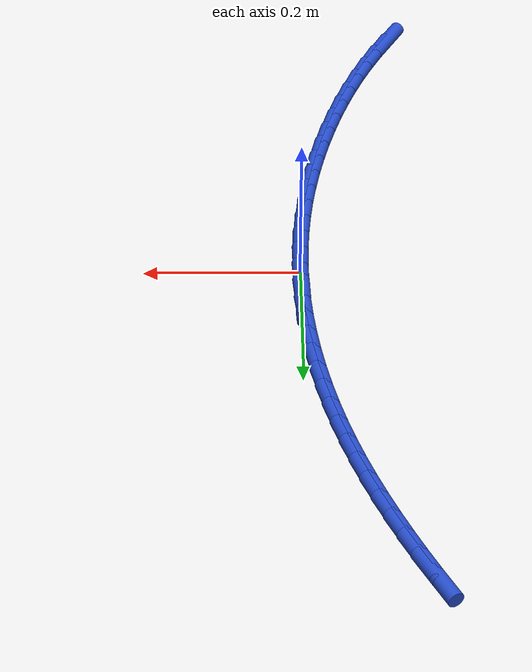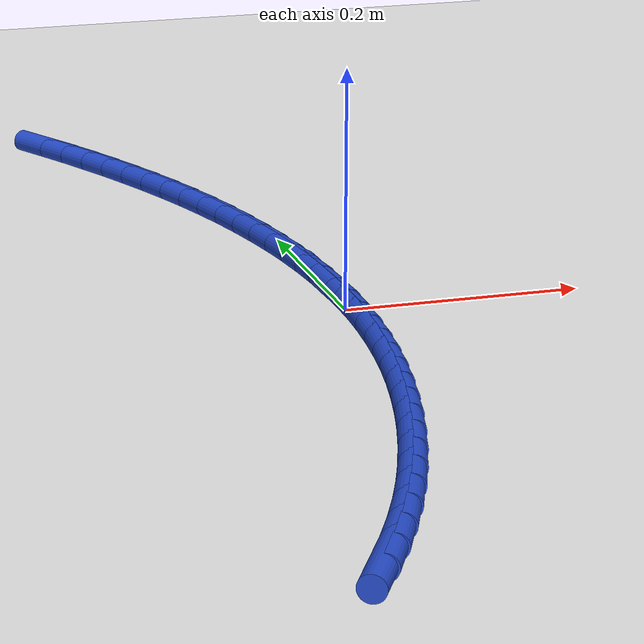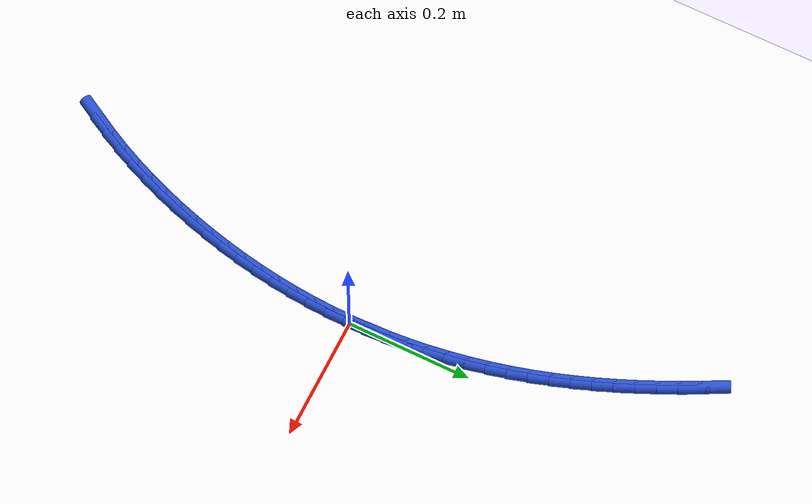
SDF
<sdf version="1.6">
 <world name="default">
  <model name="ground_plane">
   <static>1</static>
   <link name="link">
    <collision name="collision">
     <geometry><plane><normal>0 0 1</normal><size>100 100</size></plane></geometry>
     <surface><friction><ode><mu>100</mu><mu2>50</mu2></ode></friction></surface>
    </collision>
    <visual name="visual">
     <cast_shadows>0</cast_shadows>
     <geometry><plane><normal>0 0 1</normal><size>100 100</size></plane></geometry>
     <material>
      <script><uri>file://media/materials/scripts/gazebo.material</uri><name>Gazebo/WhiteGlow</name></script>
     </material>
    </visual>
   </link>
  </model>
  <model name="line">
   <link name="link_0">
    <pose>3.209238430557093e-17 -1.3877787807814457e-17 0.01 0 1.57 -1.5539555337923852</pose>
    <collision name="collision">
     <geometry><cylinder><radius>0.01</radius><length>0.08</length></cylinder></geometry>
    </collision>
    <visual name="visual">
     <material>
      <script><name>Gazebo/Blue</name><uri>file://media/materials/scripts/gazebo.material</uri></script>
     </material>
     <geometry><cylinder><radius>0.01</radius><length>0.08</length></cylinder></geometry>
    </visual>
   </link>
   <link name="link_1">
    <pose>-0.0005427959826515752 0.03222797566954058 0.01 0 1.57 -1.520898807873776</pose>
    <collision name="collision">
     <geometry><cylinder><radius>0.01</radius><length>0.08</length></cylinder></geometry>
    </collision>
    <visual name="visual">
     <material>
      <script><name>Gazebo/Blue</name><uri>file://media/materials/scripts/gazebo.material</uri></script>
     </material>
     <geometry><cylinder><radius>0.01</radius><length>0.08</length></cylinder></geometry>
    </visual>
   </link>
   <link name="link_2">
    <pose>-0.002152261248135734 0.06445661849176589 0.01 0 1.57 -1.4883414030620206</pose>
    <collision name="collision">
     <geometry><cylinder><radius>0.01</radius><length>0.08</length></cylinder></geometry>
    </collision>
    <visual name="visual">
     <material>
      <script><name>Gazebo/Blue</name><uri>file://media/materials/scripts/gazebo.material</uri></script>
     </material>
     <geometry><cylinder><radius>0.01</radius><length>0.08</length></cylinder></geometry>
    </visual>
   </link>
   <link name="link_3">
    <pose>-0.004812398516318131 0.09664518674869334 0.01 0 1.57 -1.4562248974388412</pose>
    <collision name="collision">
     <geometry><cylinder><radius>0.01</radius><length>0.08</length></cylinder></geometry>
    </collision>
    <visual name="visual">
     <material>
      <script><name>Gazebo/Blue</name><uri>file://media/materials/scripts/gazebo.material</uri></script>
     </material>
     <geometry><cylinder><radius>0.01</radius><length>0.08</length></cylinder></geometry>
    </visual>
   </link>
   <link name="link_4">
    <pose>-0.008507210507064461 0.12875293872234053 0.01 0 1.57 -1.4244891618440185</pose>
    <collision name="collision">
     <geometry><cylinder><radius>0.01</radius><length>0.08</length></cylinder></geometry>
    </collision>
    <visual name="visual">
     <material>
      <script><name>Gazebo/Blue</name><uri>file://media/materials/scripts/gazebo.material</uri></script>
     </material>
     <geometry><cylinder><radius>0.01</radius><length>0.08</length></cylinder></geometry>
    </visual>
   </link>
   <link name="link_5">
    <pose>-0.013220699940240416 0.16073913269472495 0.01 0 1.57 -1.3930726529118578</pose>
    <collision name="collision">
     <geometry><cylinder><radius>0.01</radius><length>0.08</length></cylinder></geometry>
    </collision>
    <visual name="visual">
     <material>
      <script><name>Gazebo/Blue</name><uri>file://media/materials/scripts/gazebo.material</uri></script>
     </material>
     <geometry><cylinder><radius>0.01</radius><length>0.08</length></cylinder></geometry>
    </visual>
   </link>
   <link name="link_6">
    <pose>-0.018936869535711668 0.19256302694786406 0.01 0 1.57 -1.3619126327222981</pose>
    <collision name="collision">
     <geometry><cylinder><radius>0.01</radius><length>0.08</length></cylinder></geometry>
    </collision>
    <visual name="visual">
     <material>
      <script><name>Gazebo/Blue</name><uri>file://media/materials/scripts/gazebo.material</uri></script>
     </material>
     <geometry><cylinder><radius>0.01</radius><length>0.08</length></cylinder></geometry>
    </visual>
   </link>
   <link name="link_7">
    <pose>-0.02563972201334393 0.22418387976377552 0.01 0 1.57 -1.330945325788615</pose>
    <collision name="collision">
     <geometry><cylinder><radius>0.01</radius><length>0.08</length></cylinder></geometry>
    </collision>
    <visual name="visual">
     <material>
      <script><name>Gazebo/Blue</name><uri>file://media/materials/scripts/gazebo.material</uri></script>
     </material>
     <geometry><cylinder><radius>0.01</radius><length>0.08</length></cylinder></geometry>
    </visual>
   </link>
   <link name="link_8">
    <pose>-0.033313260093002874 0.25556094942447666 0.01 0 1.57 -1.3001069973551977</pose>
    <collision name="collision">
     <geometry><cylinder><radius>0.01</radius><length>0.08</length></cylinder></geometry>
    </collision>
    <visual name="visual">
     <material>
      <script><name>Gazebo/Blue</name><uri>file://media/materials/scripts/gazebo.material</uri></script>
     </material>
     <geometry><cylinder><radius>0.01</radius><length>0.08</length></cylinder></geometry>
    </visual>
   </link>
   <link name="link_9">
    <pose>-0.04194146313543204 0.2866535274796294 0.01 0 1.57 -1.2697153282985387</pose>
    <collision name="collision">
     <geometry><cylinder><radius>0.01</radius><length>0.08</length></cylinder></geometry>
    </collision>
    <visual name="visual">
     <material>
      <script><name>Gazebo/Blue</name><uri>file://media/materials/scripts/gazebo.material</uri></script>
     </material>
     <geometry><cylinder><radius>0.01</radius><length>0.08</length></cylinder></geometry>
    </visual>
   </link>
   <link name="link_10">
    <pose>-0.05149934680597828 0.31743367141365597 0.01 0 1.57 -1.2407146001281513</pose>
    <collision name="collision">
     <geometry><cylinder><radius>0.01</radius><length>0.08</length></cylinder></geometry>
    </collision>
    <visual name="visual">
     <material>
      <script><name>Gazebo/Blue</name><uri>file://media/materials/scripts/gazebo.material</uri></script>
     </material>
     <geometry><cylinder><radius>0.01</radius><length>0.08</length></cylinder></geometry>
    </visual>
   </link>
   <link name="link_11">
    <pose>-0.06193946427947058 0.3479054293884641 0.01 0 1.57 -1.2132811763538722</pose>
    <collision name="collision">
     <geometry><cylinder><radius>0.01</radius><length>0.08</length></cylinder></geometry>
    </collision>
    <visual name="visual">
     <material>
      <script><name>Gazebo/Blue</name><uri>file://media/materials/scripts/gazebo.material</uri></script>
     </material>
     <geometry><cylinder><radius>0.01</radius><length>0.08</length></cylinder></geometry>
    </visual>
   </link>
   <link name="link_12">
    <pose>-0.07321090688250925 0.37807777986832913 0.01 0 1.57 -1.1874345433328544</pose>
    <collision name="collision">
     <geometry><cylinder><radius>0.01</radius><length>0.08</length></cylinder></geometry>
    </collision>
    <visual name="visual">
     <material>
      <script><name>Gazebo/Blue</name><uri>file://media/materials/scripts/gazebo.material</uri></script>
     </material>
     <geometry><cylinder><radius>0.01</radius><length>0.08</length></cylinder></geometry>
    </visual>
   </link>
   <link name="link_13">
    <pose>-0.08526276594169455 0.40795970131752674 0.01 0 1.57 -1.1631834626038535</pose>
    <collision name="collision">
     <geometry><cylinder><radius>0.01</radius><length>0.08</length></cylinder></geometry>
    </collision>
    <visual name="visual">
     <material>
      <script><name>Gazebo/Blue</name><uri>file://media/materials/scripts/gazebo.material</uri></script>
     </material>
     <geometry><cylinder><radius>0.01</radius><length>0.08</length></cylinder></geometry>
    </visual>
   </link>
   <link name="link_14">
    <pose>-0.09804413278362671 0.43756017220033244 0.01 0 1.57 -1.1405279082285322</pose>
    <collision name="collision">
     <geometry><cylinder><radius>0.01</radius><length>0.08</length></cylinder></geometry>
    </collision>
    <visual name="visual">
     <material>
      <script><name>Gazebo/Blue</name><uri>file://media/materials/scripts/gazebo.material</uri></script>
     </material>
     <geometry><cylinder><radius>0.01</radius><length>0.08</length></cylinder></geometry>
    </visual>
   </link>
   <link name="link_15">
    <pose>-0.11150409873490603 0.4668881709810217 0.01 0 1.57 -1.119460937089077</pose>
    <collision name="collision">
     <geometry><cylinder><radius>0.01</radius><length>0.08</length></cylinder></geometry>
    </collision>
    <visual name="visual">
     <material>
      <script><name>Gazebo/Blue</name><uri>file://media/materials/scripts/gazebo.material</uri></script>
     </material>
     <geometry><cylinder><radius>0.01</radius><length>0.08</length></cylinder></geometry>
    </visual>
   </link>
   <link name="link_16">
    <pose>-0.12559175512213278 0.4959526761238701 0.01 0 1.57 -1.0999704429787138</pose>
    <collision name="collision">
     <geometry><cylinder><radius>0.01</radius><length>0.08</length></cylinder></geometry>
    </collision>
    <visual name="visual">
     <material>
      <script><name>Gazebo/Blue</name><uri>file://media/materials/scripts/gazebo.material</uri></script>
     </material>
     <geometry><cylinder><radius>0.01</radius><length>0.08</length></cylinder></geometry>
    </visual>
   </link>
   <link name="link_17">
    <pose>-0.1402561932719072 0.5247626660931531 0.01 0 1.57 -1.0820407642688685</pose>
    <collision name="collision">
     <geometry><cylinder><radius>0.01</radius><length>0.08</length></cylinder></geometry>
    </collision>
    <visual name="visual">
     <material>
      <script><name>Gazebo/Blue</name><uri>file://media/materials/scripts/gazebo.material</uri></script>
     </material>
     <geometry><cylinder><radius>0.01</radius><length>0.08</length></cylinder></geometry>
    </visual>
   </link>
   <link name="link_204">
    <pose>-0.1300039838711899 -0.49573398633920474 0.01 0 1.57 1.0605443323104395</pose>
    <collision name="collision">
     <geometry><cylinder><radius>0.01</radius><length>0.08</length></cylinder></geometry>
    </collision>
    <visual name="visual">
     <material>
      <script><name>Gazebo/Blue</name><uri>file://media/materials/scripts/gazebo.material</uri></script>
     </material>
     <geometry><cylinder><radius>0.01</radius><length>0.08</length></cylinder></geometry>
    </visual>
   </link>
   <link name="link_205">
    <pose>-0.1143548819066688 -0.4677736634628429 0.01 0 1.57 1.1012728994300205</pose>
    <collision name="collision">
     <geometry><cylinder><radius>0.01</radius><length>0.08</length></cylinder></geometry>
    </collision>
    <visual name="visual">
     <material>
      <script><name>Gazebo/Blue</name><uri>file://media/materials/scripts/gazebo.material</uri></script>
     </material>
     <geometry><cylinder><radius>0.01</radius><length>0.08</length></cylinder></geometry>
    </visual>
   </link>
   <link name="link_206">
    <pose>-0.09975709774059631 -0.43900198821292097 0.01 0 1.57 1.1395344680236101</pose>
    <collision name="collision">
     <geometry><cylinder><radius>0.01</radius><length>0.08</length></cylinder></geometry>
    </collision>
    <visual name="visual">
     <material>
      <script><name>Gazebo/Blue</name><uri>file://media/materials/scripts/gazebo.material</uri></script>
     </material>
     <geometry><cylinder><radius>0.01</radius><length>0.08</length></cylinder></geometry>
    </visual>
   </link>
   <link name="link_207">
    <pose>-0.08619366738215704 -0.4095258291788314 0.01 0 1.57 1.1755717589647625</pose>
    <collision name="collision">
     <geometry><cylinder><radius>0.01</radius><length>0.08</length></cylinder></geometry>
    </collision>
    <visual name="visual">
     <material>
      <script><name>Gazebo/Blue</name><uri>file://media/materials/scripts/gazebo.material</uri></script>
     </material>
     <geometry><cylinder><radius>0.01</radius><length>0.08</length></cylinder></geometry>
    </visual>
   </link>
   <link name="link_208">
    <pose>-0.07364762684053655 -0.379452054949969 0.01 0 1.57 1.2096206889909566</pose>
    <collision name="collision">
     <geometry><cylinder><radius>0.01</radius><length>0.08</length></cylinder></geometry>
    </collision>
    <visual name="visual">
     <material>
      <script><name>Gazebo/Blue</name><uri>file://media/materials/scripts/gazebo.material</uri></script>
     </material>
     <geometry><cylinder><radius>0.01</radius><length>0.08</length></cylinder></geometry>
    </visual>
   </link>
   <link name="link_209">
    <pose>-0.06210201212491945 -0.34888753411572665 0.01 0 1.57 1.2419084918990468</pose>
    <collision name="collision">
     <geometry><cylinder><radius>0.01</radius><length>0.08</length></cylinder></geometry>
    </collision>
    <visual name="visual">
     <material>
      <script><name>Gazebo/Blue</name><uri>file://media/materials/scripts/gazebo.material</uri></script>
     </material>
     <geometry><cylinder><radius>0.01</radius><length>0.08</length></cylinder></geometry>
    </visual>
   </link>
   <link name="link_210">
    <pose>-0.05153985924449059 -0.3179391352654975 0.01 0 1.57 1.2726532651868756</pose>
    <collision name="collision">
     <geometry><cylinder><radius>0.01</radius><length>0.08</length></cylinder></geometry>
    </collision>
    <visual name="visual">
     <material>
      <script><name>Gazebo/Blue</name><uri>file://media/materials/scripts/gazebo.material</uri></script>
     </material>
     <geometry><cylinder><radius>0.01</radius><length>0.08</length></cylinder></geometry>
    </visual>
   </link>
   <link name="link_211">
    <pose>-0.0419442042084349 -0.286713726988675 0.01 0 1.57 1.3022356317836081</pose>
    <collision name="collision">
     <geometry><cylinder><radius>0.01</radius><length>0.08</length></cylinder></geometry>
    </collision>
    <visual name="visual">
     <material>
      <script><name>Gazebo/Blue</name><uri>file://media/materials/scripts/gazebo.material</uri></script>
     </material>
     <geometry><cylinder><radius>0.01</radius><length>0.08</length></cylinder></geometry>
    </visual>
   </link>
   <link name="link_212">
    <pose>-0.03330128864184258 -0.2553088340292944 0.01 0 1.57 1.3319050190234845</pose>
    <collision name="collision">
     <geometry><cylinder><radius>0.01</radius><length>0.08</length></cylinder></geometry>
    </collision>
    <visual name="visual">
     <material>
      <script><name>Gazebo/Blue</name><uri>file://media/materials/scripts/gazebo.material</uri></script>
     </material>
     <geometry><cylinder><radius>0.01</radius><length>0.08</length></cylinder></geometry>
    </visual>
   </link>
   <link name="link_213">
    <pose>-0.02561815407555467 -0.22376135281268242 0.01 0 1.57 1.362118688109488</pose>
    <collision name="collision">
     <geometry><cylinder><radius>0.01</radius><length>0.08</length></cylinder></geometry>
    </collision>
    <visual name="visual">
     <material>
      <script><name>Gazebo/Blue</name><uri>file://media/materials/scripts/gazebo.material</uri></script>
     </material>
     <geometry><cylinder><radius>0.01</radius><length>0.08</length></cylinder></geometry>
    </visual>
   </link>
   <link name="link_214">
    <pose>-0.018910142278503066 -0.1920839859295175 0.01 0 1.57 1.392871093643804</pose>
    <collision name="collision">
     <geometry><cylinder><radius>0.01</radius><length>0.08</length></cylinder></geometry>
    </collision>
    <visual name="visual">
     <material>
      <script><name>Gazebo/Blue</name><uri>file://media/materials/scripts/gazebo.material</uri></script>
     </material>
     <geometry><cylinder><radius>0.01</radius><length>0.08</length></cylinder></geometry>
    </visual>
   </link>
   <link name="link_215">
    <pose>-0.013192616649792106 -0.16028937292206902 0.01 0 1.57 1.4241515739120638</pose>
    <collision name="collision">
     <geometry><cylinder><radius>0.01</radius><length>0.08</length></cylinder></geometry>
    </collision>
    <visual name="visual">
     <material>
      <script><name>Gazebo/Blue</name><uri>file://media/materials/scripts/gazebo.material</uri></script>
     </material>
     <geometry><cylinder><radius>0.01</radius><length>0.08</length></cylinder></geometry>
    </visual>
   </link>
   <link name="link_216">
    <pose>-0.008480940588526073 -0.12839015333260553 0.01 0 1.57 1.4559452533505601</pose>
    <collision name="collision">
     <geometry><cylinder><radius>0.01</radius><length>0.08</length></cylinder></geometry>
    </collision>
    <visual name="visual">
     <material>
      <script><name>Gazebo/Blue</name><uri>file://media/materials/scripts/gazebo.material</uri></script>
     </material>
     <geometry><cylinder><radius>0.01</radius><length>0.08</length></cylinder></geometry>
    </visual>
   </link>
   <link name="link_217">
    <pose>-0.004790477493809553 -0.09639896670339805 0.01 0 1.57 1.488232832507808</pose>
    <collision name="collision">
     <geometry><cylinder><radius>0.01</radius><length>0.08</length></cylinder></geometry>
    </collision>
    <visual name="visual">
     <material>
      <script><name>Gazebo/Blue</name><uri>file://media/materials/scripts/gazebo.material</uri></script>
     </material>
     <geometry><cylinder><radius>0.01</radius><length>0.08</length></cylinder></geometry>
    </visual>
   </link>
   <link name="link_218">
    <pose>-0.0021365907647467874 -0.06432845257671518 0.01 0 1.57 1.520990431122263</pose>
    <collision name="collision">
     <geometry><cylinder><radius>0.01</radius><length>0.08</length></cylinder></geometry>
    </collision>
    <visual name="visual">
     <material>
      <script><name>Gazebo/Blue</name><uri>file://media/materials/scripts/gazebo.material</uri></script>
     </material>
     <geometry><cylinder><radius>0.01</radius><length>0.08</length></cylinder></geometry>
    </visual>
   </link>
   <link name="link_219">
    <pose>-0.0005346438004421353 -0.03219125049482634 0.01 0 1.57 1.5541894959920701</pose>
    <collision name="collision">
     <geometry><cylinder><radius>0.01</radius><length>0.08</length></cylinder></geometry>
    </collision>
    <visual name="visual">
     <material>
      <script><name>Gazebo/Blue</name><uri>file://media/materials/scripts/gazebo.material</uri></script>
     </material>
     <geometry><cylinder><radius>0.01</radius><length>0.08</length></cylinder></geometry>
    </visual>
   </link>
   <link name="link_220">
    <pose>2.949029909160572e-17 -1.3877787807814457e-16 0.01 0 1.57 -1.5537958689800162</pose>
    <collision name="collision">
     <geometry><cylinder><radius>0.01</radius><length>0.08</length></cylinder></geometry>
    </collision>
    <visual name="visual">
     <material>
      <script><name>Gazebo/Blue</name><uri>file://media/materials/scripts/gazebo.material</uri></script>
     </material>
     <geometry><cylinder><radius>0.01</radius><length>0.08</length></cylinder></geometry>
    </visual>
   </link>
   <link name="link_221">
    <pose>-0.0005480227625246541 0.03223265936549166 0.01 0 1.57 -1.519818219459185</pose>
    <collision name="collision">
     <geometry><cylinder><radius>0.01</radius><length>0.08</length></cylinder></geometry>
    </collision>
    <visual name="visual">
     <material>
      <script><name>Gazebo/Blue</name><uri>file://media/materials/scripts/gazebo.material</uri></script>
     </material>
     <geometry><cylinder><radius>0.01</radius><length>0.08</length></cylinder></geometry>
    </visual>
   </link>
   <link name="link_222">
    <pose>-0.0021940754871206053 0.0644940880593828 0.01 0 1.57 -1.536789649510679</pose>
    <collision name="collision">
     <geometry><cylinder><radius>0.01</radius><length>0.08</length></cylinder></geometry>
    </collision>
    <visual name="visual">
     <material>
      <script><name>Gazebo/Blue</name><uri>file://media/materials/scripts/gazebo.material</uri></script>
     </material>
     <geometry><cylinder><radius>0.01</radius><length>0.08</length></cylinder></geometry>
    </visual>
   </link>
  </model>
 </world>
</sdf>
